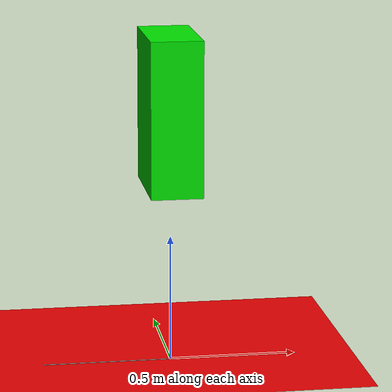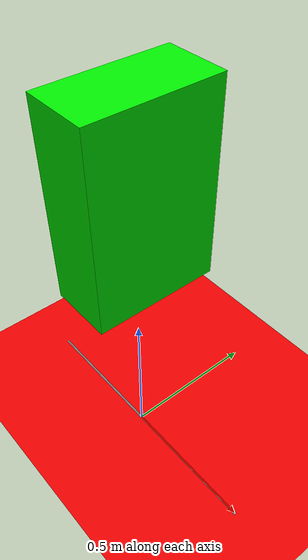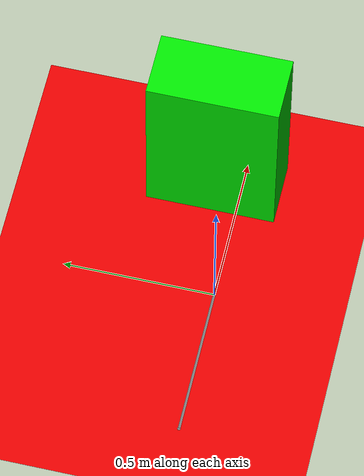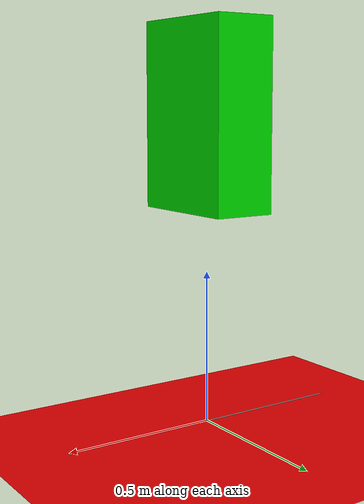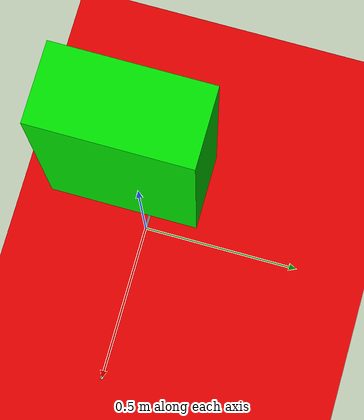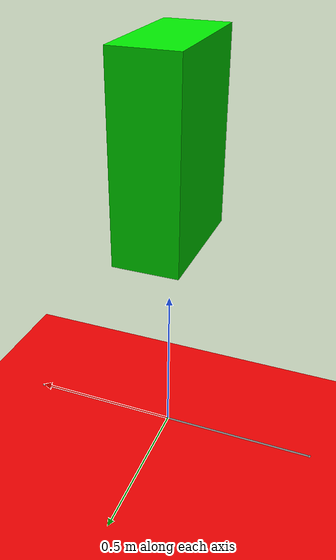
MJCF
<mujoco>
    <option timestep="0.00001">
		<flag gravity="enable"/>
	</option>
   <worldbody>
      <light diffuse=".5 .5 .5" pos="0 0 3" dir="0 0 -1"/>
      <geom type="plane" size="1 1 0.1" rgba=".9 0 0 1"/>
      <site name="s0" pos="0.5 0 -0.01" size="0.01"/>
      <site name="s1" pos="-0.5 0 -0.01" size="0.01"/>
      <body name="box" pos="0 0 1">
         <joint name="FreeJoint" type="free"/>
         <geom type="box" size=".1 .2 .3" rgba="0 .9 0 1"/>
      </body>
   </worldbody>
   <tendon>
        <spatial name="tendon" width="0.01">
            <site site="s0"/>
            <site site="s1"/>
        </spatial>
   </tendon>
    <actuator>
        <muscle name="muscle" tendon="tendon" lengthrange="0 1"/>
    </actuator>
</mujoco>
